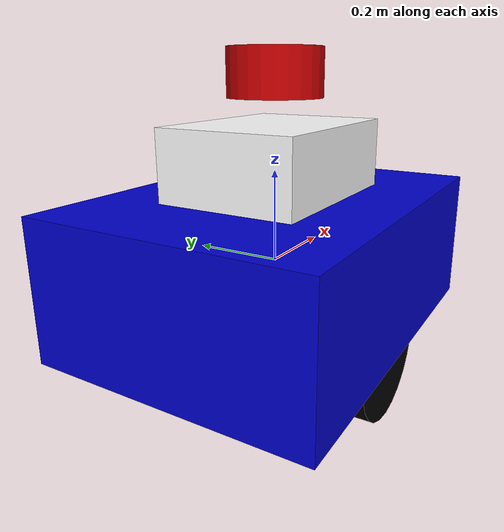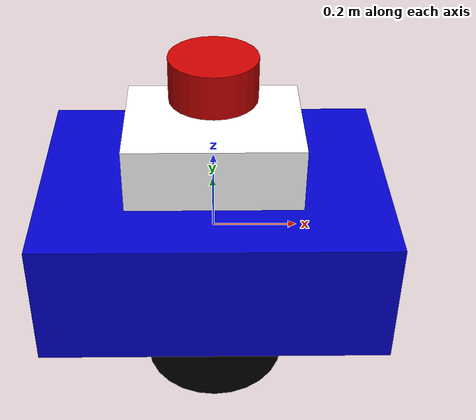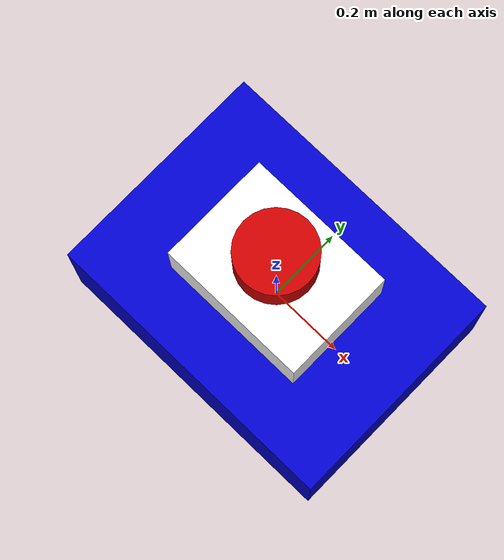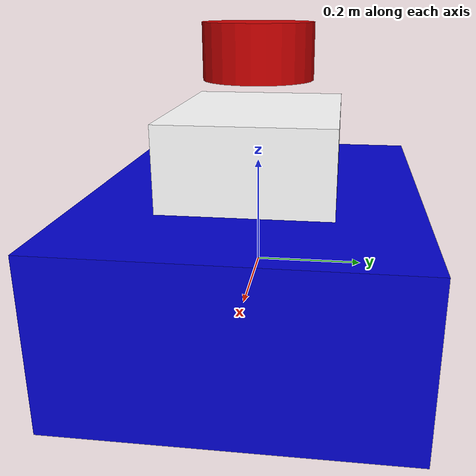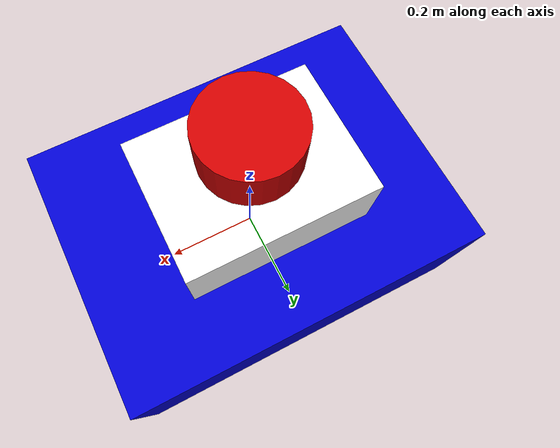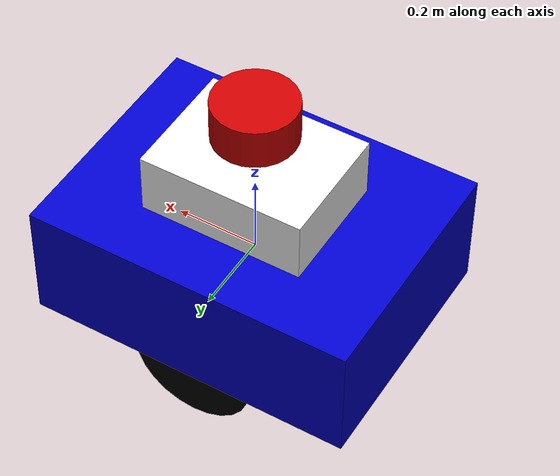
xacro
<?xml version="1.0"?>
<robot xmlns:xacro="http://www.ros.org/wiki/xacro" name="india_delivery_robot">

  <!-- Properties -->
  <xacro:property name="base_width" value="0.6"/>
  <xacro:property name="base_length" value="0.8"/>
  <xacro:property name="base_height" value="0.3"/>
  <xacro:property name="wheel_radius" value="0.15"/>
  <xacro:property name="wheel_width" value="0.05"/>
  <xacro:property name="wheel_separation" value="0.5"/>

  <!-- Materials -->
  <material name="blue">
    <color rgba="0 0 0.8 1"/>
  </material>
  <material name="black">
    <color rgba="0 0 0 1"/>
  </material>
  <material name="white">
    <color rgba="1 1 1 1"/>
  </material>
  <material name="red">
    <color rgba="0.8 0 0 1"/>
  </material>

  <!-- Base Link -->
  <link name="base_link">
    <visual>
      <origin xyz="0 0 0" rpy="0 0 0"/>
      <geometry>
        <box size="${base_length} ${base_width} ${base_height}"/>
      </geometry>
      <material name="blue"/>
    </visual>
    <collision>
      <origin xyz="0 0 0" rpy="0 0 0"/>
      <geometry>
        <box size="${base_length} ${base_width} ${base_height}"/>
      </geometry>
    </collision>
    <inertial>
      <mass value="50"/>
      <origin xyz="0 0 0" rpy="0 0 0"/>
      <inertia ixx="1.0" ixy="0.0" ixz="0.0"
               iyy="1.0" iyz="0.0"
               izz="1.0"/>
    </inertial>
  </link>

  <!-- Left Wheel -->
  <link name="left_wheel">
    <visual>
      <origin xyz="0 0 0" rpy="1.5708 0 0"/>
      <geometry>
        <cylinder radius="${wheel_radius}" length="${wheel_width}"/>
      </geometry>
      <material name="black"/>
    </visual>
    <collision>
      <origin xyz="0 0 0" rpy="1.5708 0 0"/>
      <geometry>
        <cylinder radius="${wheel_radius}" length="${wheel_width}"/>
      </geometry>
    </collision>
    <inertial>
      <mass value="5"/>
      <origin xyz="0 0 0" rpy="1.5708 0 0"/>
      <inertia ixx="0.1" ixy="0.0" ixz="0.0"
               iyy="0.1" iyz="0.0"
               izz="0.1"/>
    </inertial>
  </link>

  <!-- Right Wheel -->
  <link name="right_wheel">
    <visual>
      <origin xyz="0 0 0" rpy="1.5708 0 0"/>
      <geometry>
        <cylinder radius="${wheel_radius}" length="${wheel_width}"/>
      </geometry>
      <material name="black"/>
    </visual>
    <collision>
      <origin xyz="0 0 0" rpy="1.5708 0 0"/>
      <geometry>
        <cylinder radius="${wheel_radius}" length="${wheel_width}"/>
      </geometry>
    </collision>
    <inertial>
      <mass value="5"/>
      <origin xyz="0 0 0" rpy="1.5708 0 0"/>
      <inertia ixx="0.1" ixy="0.0" ixz="0.0"
               iyy="0.1" iyz="0.0"
               izz="0.1"/>
    </inertial>
  </link>

  <!-- Caster Wheel -->
  <link name="caster_wheel">
    <visual>
      <origin xyz="0 0 0" rpy="0 0 0"/>
      <geometry>
        <sphere radius="0.05"/>
      </geometry>
      <material name="white"/>
    </visual>
    <collision>
      <origin xyz="0 0 0" rpy="0 0 0"/>
      <geometry>
        <sphere radius="0.05"/>
      </geometry>
    </collision>
    <inertial>
      <mass value="1"/>
      <origin xyz="0 0 0" rpy="0 0 0"/>
      <inertia ixx="0.01" ixy="0.0" ixz="0.0"
               iyy="0.01" iyz="0.0"
               izz="0.01"/>
    </inertial>
  </link>

  <!-- Delivery Compartment -->
  <link name="delivery_compartment">
    <visual>
      <origin xyz="0 0 0.2" rpy="0 0 0"/>
      <geometry>
        <box size="0.4 0.3 0.2"/>
      </geometry>
      <material name="white"/>
    </visual>
    <collision>
      <origin xyz="0 0 0.2" rpy="0 0 0"/>
      <geometry>
        <box size="0.4 0.3 0.2"/>
      </geometry>
    </collision>
    <inertial>
      <mass value="10"/>
      <origin xyz="0 0 0.2" rpy="0 0 0"/>
      <inertia ixx="0.1" ixy="0.0" ixz="0.0"
               iyy="0.1" iyz="0.0"
               izz="0.1"/>
    </inertial>
  </link>

  <!-- Sensor Mount -->
  <link name="sensor_mount">
    <visual>
      <origin xyz="0 0 0.4" rpy="0 0 0"/>
      <geometry>
        <cylinder radius="0.1" length="0.1"/>
      </geometry>
      <material name="red"/>
    </visual>
    <collision>
      <origin xyz="0 0 0.4" rpy="0 0 0"/>
      <geometry>
        <cylinder radius="0.1" length="0.1"/>
      </geometry>
    </collision>
    <inertial>
      <mass value="2"/>
      <origin xyz="0 0 0.4" rpy="0 0 0"/>
      <inertia ixx="0.01" ixy="0.0" ixz="0.0"
               iyy="0.01" iyz="0.0"
               izz="0.01"/>
    </inertial>
  </link>

  <!-- Lidar Sensor -->
  <link name="lidar_link">
    <visual>
      <origin xyz="0 0 0" rpy="0 0 0"/>
      <geometry>
        <cylinder radius="0.05" length="0.05"/>
      </geometry>
      <material name="black"/>
    </visual>
    <collision>
      <origin xyz="0 0 0" rpy="0 0 0"/>
      <geometry>
        <cylinder radius="0.05" length="0.05"/>
      </geometry>
    </collision>
    <inertial>
      <mass value="0.5"/>
      <origin xyz="0 0 0" rpy="0 0 0"/>
      <inertia ixx="0.001" ixy="0.0" ixz="0.0"
               iyy="0.001" iyz="0.0"
               izz="0.001"/>
    </inertial>
  </link>

  <!-- Joints -->
  <joint name="left_wheel_joint" type="continuous">
    <parent link="base_link"/>
    <child link="left_wheel"/>
    <origin xyz="0 ${wheel_separation/2} -${wheel_radius}" rpy="0 0 0"/>
    <axis xyz="0 1 0"/>
  </joint>

  <joint name="right_wheel_joint" type="continuous">
    <parent link="base_link"/>
    <child link="right_wheel"/>
    <origin xyz="0 -${wheel_separation/2} -${wheel_radius}" rpy="0 0 0"/>
    <axis xyz="0 1 0"/>
  </joint>

  <joint name="caster_wheel_joint" type="fixed">
    <parent link="base_link"/>
    <child link="caster_wheel"/>
    <origin xyz="0.3 0 -${wheel_radius}" rpy="0 0 0"/>
  </joint>

  <joint name="delivery_compartment_joint" type="fixed">
    <parent link="base_link"/>
    <child link="delivery_compartment"/>
    <origin xyz="0 0 0" rpy="0 0 0"/>
  </joint>

  <joint name="sensor_mount_joint" type="fixed">
    <parent link="base_link"/>
    <child link="sensor_mount"/>
    <origin xyz="0 0 0" rpy="0 0 0"/>
  </joint>

  <joint name="lidar_joint" type="fixed">
    <parent link="sensor_mount"/>
    <child link="lidar_link"/>
    <origin xyz="0 0 0" rpy="0 0 0"/>
  </joint>

  <!-- Gazebo Plugins -->
  <gazebo>
    <plugin name="differential_drive_controller" filename="libgazebo_ros_diff_drive.so">
      <updateRate>50</updateRate>
      <leftJoint>left_wheel_joint</leftJoint>
      <rightJoint>right_wheel_joint</rightJoint>
      <wheelSeparation>${wheel_separation}</wheelSeparation>
      <wheelDiameter>${2*wheel_radius}</wheelDiameter>
      <wheelAcceleration>1.0</wheelAcceleration>
      <wheelTorque>20</wheelTorque>
      <commandTopic>cmd_vel</commandTopic>
      <odometryTopic>odom</odometryTopic>
      <odometryFrame>odom</odometryFrame>
      <robotBaseFrame>base_link</robotBaseFrame>
      <odometrySource>world</odometrySource>
      <publishWheelTF>true</publishWheelTF>
      <publishOdom>true</publishOdom>
      <publishWheelJointState>true</publishWheelJointState>
      <legacyMode>false</legacyMode>
    </plugin>
  </gazebo>

  <!-- Lidar Plugin -->
  <gazebo reference="lidar_link">
    <sensor type="ray" name="lidar_sensor">
      <pose>0 0 0 0 0 0</pose>
      <visualize>false</visualize>
      <update_rate>40</update_rate>
      <ray>
        <scan>
          <horizontal>
            <samples>720</samples>
            <resolution>1</resolution>
            <min_angle>-3.14159</min_angle>
            <max_angle>3.14159</max_angle>
          </horizontal>
        </scan>
        <range>
          <min>0.10</min>
          <max>30.0</max>
          <resolution>0.01</resolution>
        </range>
        <noise>
          <type>gaussian</type>
          <mean>0.0</mean>
          <stddev>0.01</stddev>
        </noise>
      </ray>
      <plugin name="gazebo_ros_lidar" filename="libgazebo_ros_laser.so">
        <topicName>/scan</topicName>
        <frameName>lidar_link</frameName>
      </plugin>
    </sensor>
  </gazebo>

  <!-- IMU Plugin -->
  <gazebo reference="base_link">
    <sensor type="imu" name="imu_sensor">
      <plugin filename="libgazebo_ros_imu.so" name="imu_plugin">
        <topicName>/imu</topicName>
        <bodyName>base_link</bodyName>
        <updateRateHZ>10.0</updateRateHZ>
        <gaussianNoise>0.0</gaussianNoise>
        <xyzOffset>0 0 0</xyzOffset>
        <rpyOffset>0 0 0</rpyOffset>
        <frameName>base_link</frameName>
      </plugin>
      <always_on>true</always_on>
      <update_rate>100</update_rate>
      <visualize>true</visualize>
      <imu>
        <angular_velocity>
          <x>
            <noise type="gaussian">
              <mean>0.0</mean>
              <stddev>2e-4</stddev>
              <bias_mean>0.0000075</bias_mean>
              <bias_stddev>0.0000008</bias_stddev>
            </noise>
          </x>
          <y>
            <noise type="gaussian">
              <mean>0.0</mean>
              <stddev>2e-4</stddev>
              <bias_mean>0.0000075</bias_mean>
              <bias_stddev>0.0000008</bias_stddev>
            </noise>
          </y>
          <z>
            <noise type="gaussian">
              <mean>0.0</mean>
              <stddev>2e-4</stddev>
              <bias_mean>0.0000075</bias_mean>
              <bias_stddev>0.0000008</bias_stddev>
            </noise>
          </z>
        </angular_velocity>
        <linear_acceleration>
          <x>
            <noise type="gaussian">
              <mean>0.0</mean>
              <stddev>1.7e-2</stddev>
              <bias_mean>0.1</bias_mean>
              <bias_stddev>0.001</bias_stddev>
            </noise>
          </x>
          <y>
            <noise type="gaussian">
              <mean>0.0</mean>
              <stddev>1.7e-2</stddev>
              <bias_mean>0.1</bias_mean>
              <bias_stddev>0.001</bias_stddev>
            </noise>
          </y>
          <z>
            <noise type="gaussian">
              <mean>0.0</mean>
              <stddev>1.7e-2</stddev>
              <bias_mean>0.1</bias_mean>
              <bias_stddev>0.001</bias_stddev>
            </noise>
          </z>
        </linear_acceleration>
      </imu>
    </sensor>
  </gazebo>

</robot>
